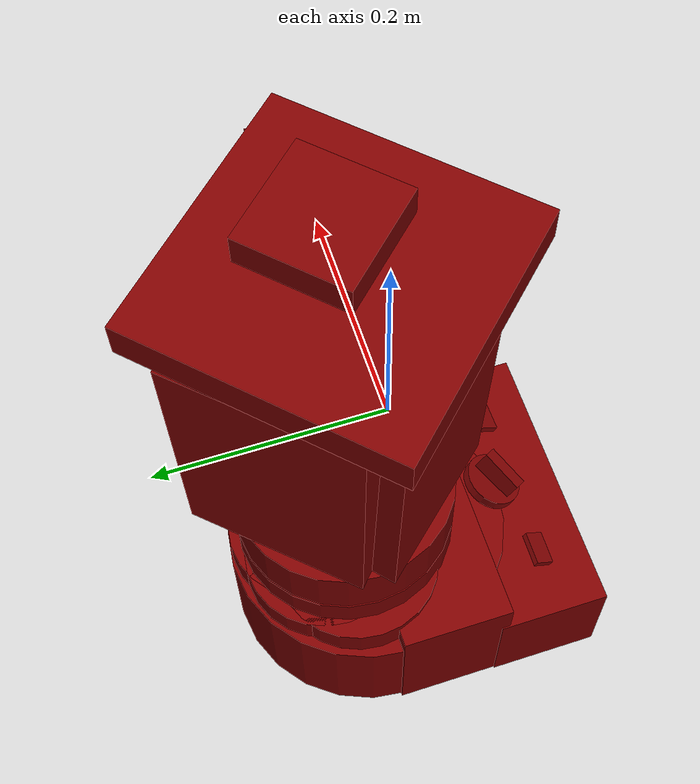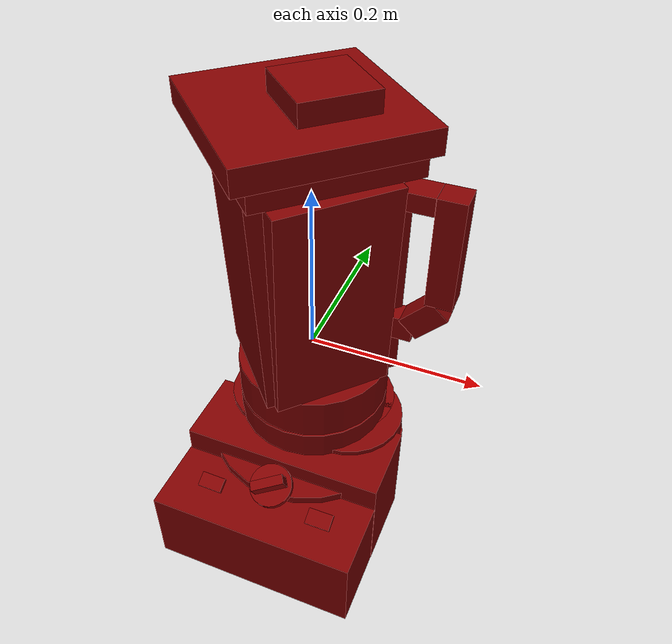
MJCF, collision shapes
<?xml version='1.0' encoding='UTF-8'?>
<mujoco model="model">
  <option timestep="0.0005" gravity="0.0 0.0 -9.81"/>
  <compiler angle="radian"/>
  <asset>
    <mesh file="visuals/Blade001.obj" name="Blade001_vis"/>
    <mesh file="visuals/Body001.obj" name="Body001_vis"/>
    <mesh file="visuals/Button001.obj" name="Button001_vis"/>
    <mesh file="visuals/Button002.obj" name="Button002_vis"/>
    <mesh file="visuals/Jug001.obj" name="Jug001_vis"/>
    <mesh file="visuals/Jug001_Clear.obj" name="Jug001_Clear_vis"/>
    <mesh file="visuals/Knob001.obj" name="Knob001_vis"/>
    <mesh file="visuals/Lid001.obj" name="Lid001_vis"/>
    <texture file="visuals/T_BC001.png" name="Body001_material" type="2d"/>
    <material name="Body001_material" rgba="1 1 1 1.0" texture="Body001_material" shininess="0.141421377658844" specular="0.33333333333333337"/>
    <texture file="visuals/T_BC001.png" name="Button001_material" type="2d"/>
    <material name="Button001_material" rgba="1 1 1 1.0" texture="Button001_material" shininess="0.141421377658844" specular="0.33333333333333337"/>
    <texture file="visuals/T_BC001.png" name="Button002_material" type="2d"/>
    <material name="Button002_material" rgba="1 1 1 1.0" texture="Button002_material" shininess="0.141421377658844" specular="0.33333333333333337"/>
    <texture file="visuals/T_BC001.png" name="Jug001_material" type="2d"/>
    <material name="Jug001_material" rgba="1 1 1 1.0" texture="Jug001_material" shininess="0.141421377658844" specular="0.33333333333333337"/>
    <texture file="visuals/T_BC001.png" name="Blade001_material" type="2d"/>
    <material name="Blade001_material" rgba="1 1 1 1.0" texture="Blade001_material" shininess="0.141421377658844" specular="3"/>
    <texture file="visuals/T_BC001.png" name="Jug001_Clear_material" type="2d"/>
    <material name="Jug001_Clear_material" rgba="1 1 1 0.699999988079071" texture="Jug001_Clear_material" shininess="0.8264863044023514" specular="0.7872340339187474"/>
    <texture file="visuals/T_BC001.png" name="Knob001_material" type="2d"/>
    <material name="Knob001_material" rgba="1 1 1 1.0" texture="Knob001_material" shininess="0.141421377658844" specular="0.33333333333333337"/>
    <texture file="visuals/T_BC001.png" name="Lid001_material" type="2d"/>
    <material name="Lid001_material" rgba="1 1 1 1.0" texture="Lid001_material" shininess="0.141421377658844" specular="0.33333333333333337"/>
  </asset>
  <default>
    <default class="visual">
      <geom conaffinity="0" contype="0" group="1" type="mesh"/>
    </default>
    <default class="collision">
      <geom group="0" rgba="0.5 0 0 0.5"/>
    </default>
    <default class="spawn">
      <geom group="0" rgba="1 1 1 0.5" contype="0" conaffinity="0"/>
      <site group="0" rgba="1 1 1 0.5"/>
    </default>
    <default class="region">
      <geom group="1" conaffinity="0" contype="0" rgba="0 1 0 0"/>
    </default>
  </default>
  <worldbody>
    <body>
      <body name="object">
        <geom mesh="Body001_vis" type="mesh" solimp="0.998 0.998 0.001" solref="0.001 1" friction="0.95 0.3 0.1" class="visual" material="Body001_material"/>
        <geom class="collision" type="box" pos="-0.01743007 -0.01908264 -0.22553408" size="0.12968866527080536 0.05051147937774658 0.07040132582187653" quat="1.0 0.0 0.0 0.0"/>
        <geom class="collision" type="box" pos="-0.01822870 -0.11254722 -0.24224916" size="0.1301640272140503 0.05060109868645668 0.053686242550611496" quat="1.0 0.0 0.0 0.0"/>
        <geom class="collision" type="cylinder" pos="-0.01745005 0.04508350 -0.15840825" size="0.09668879210948944 0.03932907059788704" quat="1.0 0.0 0.0 0.0"/>
        <geom class="collision" type="cylinder" pos="-0.01728963 0.02501012 -0.23692481" size="0.1277042180299759 0.059179969131946564" quat="1.0 0.0 0.0 0.0"/>
        <geom class="collision" type="cylinder" pos="-0.06051707 0.04713970 -0.18221265" size="0.07243027538061142 0.033565230667591095" quat="1.0 0.0 0.0 0.0"/>
        <geom class="collision" type="cylinder" pos="-0.01141017 0.07806424 -0.18221265" size="0.07243027538061142 0.033565230667591095" quat="1.0 0.0 0.0 0.0"/>
        <geom class="collision" type="cylinder" pos="0.01400837 0.06626657 -0.18221265" size="0.07243027538061142 0.033565230667591095" quat="1.0 0.0 0.0 0.0"/>
        <geom class="collision" type="cylinder" pos="0.03372710 0.03997962 -0.18221265" size="0.07243027538061142 0.033565230667591095" quat="1.0 0.0 0.0 0.0"/>
        <geom class="collision" type="cylinder" pos="-0.04073561 0.07124133 -0.18221265" size="0.07243027538061142 0.033565230667591095" quat="1.0 0.0 0.0 0.0"/>
        <body name="Button001">
          <joint axis="0.0 0.4226183593273163 -0.9063079357147217" pos="0.05751518 -0.11553806 -0.17846154" limited="true" name="Button001_joint" range="0.0 0.003" type="slide" damping="1" frictionloss="1" armature=".01" stiffness="0.5" springref="-0.5"/>
          <geom mesh="Button001_vis" type="mesh" solimp="0.998 0.998 0.001" solref="0.001 1" friction="0.95 0.3 0.1" class="visual" material="Button001_material"/>
          <geom class="collision" type="box" pos="0.05703367 -0.11604892 -0.17720503" size="0.015535996295511723 0.009651546366512775 0.0032402225770056248" quat="0.969495415687561 0.24482029676437378 0.009978671558201313 0.00648893415927887"/>
        </body>
        <body name="Button002">
          <joint axis="-5.6152605808054936e-18 0.4226183593273163 -0.9063079357147217" pos="-0.08866869 -0.11558645 -0.17845373" limited="true" name="Button002_joint" range="0.0 0.003" type="slide" damping="1" frictionloss="1" armature=".01" stiffness="0.5" springref="-0.5"/>
          <geom mesh="Button002_vis" type="mesh" solimp="0.998 0.998 0.001" solref="0.001 1" friction="0.95 0.3 0.1" class="visual" material="Button002_material"/>
          <geom class="collision" type="box" pos="-0.08898954 -0.11713010 -0.17729708" size="0.015483303926885128 0.008930300362408161 0.002988857915624976" quat="0.9694134593009949 0.2453550100326538 -0.0021198231261223555 -0.005826357286423445"/>
        </body>
        <body name="Jug001">
          <joint axis="0.0 0.0 1.0" pos="0.03004597 0.04699287 0.04808532" limited="true" name="Jug001_joint" range="0.0 0.05" type="slide" damping="1" frictionloss="1" armature=".01" stiffness="0.05"/>
          <geom mesh="Jug001_vis" type="mesh" solimp="0.998 0.998 0.001" solref="0.001 1" friction="0.95 0.3 0.1" class="visual" material="Jug001_material"/>
          <geom class="collision" type="box" pos="0.02975277 -0.01388730 0.07544540" size="0.0721902921795845 0.012196497060358524 0.13525761663913727" quat="0.9156303405761719 0.017245326191186905 0.007563496939837933 0.40157994627952576"/>
          <geom class="collision" type="box" pos="-0.06811962 0.11111925 0.07610477" size="0.07833114266395569 0.012838413007557392 0.13396118581295013" quat="0.914870023727417 -0.019253043457865715 -0.032436903566122055 0.4019826352596283"/>
          <geom class="collision" type="box" pos="-0.07223981 -0.01232059 0.07612204" size="0.0721672773361206 0.012000609189271927 0.13558508455753326" quat="0.4066144526004791 -0.017574811354279518 -0.011982575058937073 0.9133521914482117"/>
          <geom class="collision" type="box" pos="0.03248799 0.10532500 0.07599545" size="0.07356119900941849 0.010724218562245369 0.13674744963645935" quat="0.4069778621196747 -0.0019201186951249838 0.007655052468180656 0.9134039282798767"/>
          <geom class="collision" type="box" pos="0.10085973 0.04720987 0.19090898" size="0.018853865563869476 0.016030292958021164 0.010851765982806683" quat="1.0 0.0 0.0 0.0"/>
          <geom class="collision" type="box" pos="0.09130741 0.04704521 0.02014696" size="0.017213819548487663 0.013093107379972935 0.014991587027907372" quat="1.0 0.0 0.0 0.0"/>
          <geom class="collision" type="box" pos="0.13611458 0.04720987 0.13432606" size="0.015919027850031853 0.016030292958021164 0.06743469834327698" quat="1.0 0.0 0.0 0.0"/>
          <geom class="collision" type="box" pos="0.12093865 0.04692338 0.04219097" size="0.02517963945865631 0.014718655496835709 0.014991587027907372" quat="0.917942225933075 0.0 -0.39671412110328674 0.0"/>
          <geom class="collision" type="cylinder" pos="-0.01745005 0.04508350 -0.08908665" size="0.09668877720832825 0.02689594402909279" quat="1.0 0.0 0.0 0.0"/>
          <body name="Blade001">
            <joint axis="0.0 0.0 1.0" pos="-0.01694712 0.04698000 -0.03920843" limited="false" name="Blade001_joint" range="0 360" type="hinge" damping="1" frictionloss="1" armature=".01" stiffness="0.05"/>
            <geom mesh="Blade001_vis" type="mesh" solimp="0.998 0.998 0.001" solref="0.001 1" friction="0.95 0.3 0.1" class="visual" material="Blade001_material"/>
            <geom class="collision" type="box" pos="-0.01826089 0.04772887 -0.04420773" size="0.03555736690759659 0.011566841043531895 0.005374473053961992" quat="1.0 0.0 0.0 0.0"/>
            <geom class="collision" type="box" pos="-0.01660209 0.02411597 -0.04357884" size="0.010374368168413639 0.011566841043531895 0.0021979371085762978" quat="1.0 0.0 0.0 0.0"/>
            <geom class="collision" type="box" pos="-0.01660209 0.07107933 -0.04357884" size="0.010374368168413639 0.011566841043531895 0.0021979371085762978" quat="1.0 0.0 0.0 0.0"/>
            <geom class="collision" type="box" pos="-0.01660209 0.09607778 -0.05061881" size="0.010374368168413639 0.01796589232981205 0.0011200293665751815" quat="0.9813559651374817 -0.19219909608364105 -0.0 0.0"/>
            <geom class="collision" type="box" pos="-0.01660209 -0.00235559 -0.05061881" size="0.010374368168413639 0.01796589232981205 0.0011200293665751815" quat="0.9813559651374817 0.19219909608364105 0.0 0.0"/>
            <geom class="collision" type="box" pos="-0.06340711 0.04655903 -0.03094639" size="0.013877377845346928 0.0055869086645543575 0.0011185097973793745" quat="0.9225588440895081 0.0 0.3858564496040344 0.0"/>
            <geom class="collision" type="box" pos="0.02965547 0.04655903 -0.03094639" size="0.013877377845346928 0.0055869086645543575 0.0011185097973793745" quat="0.9225588440895081 0.0 -0.3858564496040344 0.0"/>
          </body>
          <body name="Jug001_Clear">
            <geom class="region" name="reg_int" type="box" pos="-0.017753785 0.04698981 0.09888576" size="0.022582325 0.06463076000000001 0.11066815"/>
            <geom mesh="Jug001_Clear_vis" type="mesh" solimp="0.998 0.998 0.001" solref="0.001 1" friction="0.95 0.3 0.1" class="visual" material="Jug001_Clear_material"/>
            <geom class="collision" type="box" pos="0.02975277 -0.01388730 0.07544540" size="0.0721902921795845 0.012196497060358524 0.13525761663913727" quat="0.9156303405761719 0.017245326191186905 0.007563496939837933 0.40157994627952576"/>
            <geom class="collision" type="box" pos="-0.06811962 0.11111925 0.07610477" size="0.07833114266395569 0.012838413007557392 0.13396118581295013" quat="0.914870023727417 -0.019253043457865715 -0.032436903566122055 0.4019826352596283"/>
            <geom class="collision" type="box" pos="-0.07223981 -0.01232059 0.07612204" size="0.0721672773361206 0.012000609189271927 0.13558508455753326" quat="0.4066144526004791 -0.017574811354279518 -0.011982575058937073 0.9133521914482117"/>
            <geom class="collision" type="box" pos="0.03248799 0.10532500 0.07599545" size="0.07356119900941849 0.010724218562245369 0.13674744963645935" quat="0.4069778621196747 -0.0019201186951249838 0.007655052468180656 0.9134039282798767"/>
          </body>
        </body>
        <body name="Knob001">
          <joint axis="0.0 0.42261821031570435 -0.9063078165054321" pos="-0.01493116 -0.10340426 -0.16157910" limited="true" name="Knob001_joint" range="0.0 4.1887902047863905" type="hinge" damping="0.05" frictionloss="0.1" armature="0.001"/>
          <geom mesh="Knob001_vis" type="mesh" solimp="0.998 0.998 0.001" solref="0.001 1" friction="0.95 0.3 0.1" class="visual" material="Knob001_material"/>
          <geom class="collision" type="cylinder" pos="-0.01481691 -0.09886119 -0.16865791" size="0.026953713968396187 0.004453835543245077" quat="0.9746725559234619 0.22363674640655518 -4.965733631128541e-17 -1.5369836527898264e-24" density="0.001"/>
          <geom class="collision" type="box" pos="-0.01453726 -0.10554808 -0.15796772" size="0.0061064972542226315 0.020651644095778465 0.011173461563885212" quat="0.8418465256690979 0.2161499410867691 0.09332498162984848 -0.4856584072113037" density="0.001"/>
        </body>
        <body name="Lid001">
          <joint axis="0.0 0.0 1.0" pos="-0.02119968 0.04713074 0.26329149" limited="true" name="Lid001_joint" range="0.0 0.08" type="slide" damping="1" frictionloss="1" armature=".01" stiffness="0.05"/>
          <geom mesh="Lid001_vis" type="mesh" solimp="0.998 0.998 0.001" solref="0.001 1" friction="0.95 0.3 0.1" class="visual" material="Lid001_material"/>
          <geom class="collision" type="box" pos="-0.03192177 0.04726026 0.25546540" size="0.10757600516080856 0.10634037852287292 0.014792152680456638" quat="0.9254322648048401 0.0 0.0 0.3789130747318268"/>
          <geom class="collision" type="box" pos="-0.02674745 0.04609625 0.22775848" size="0.0941307470202446 0.09299993515014648 0.01283076498657465" quat="0.9254322648048401 0.0 0.0 0.3789130747318268"/>
          <geom class="collision" type="box" pos="-0.00757370 0.04826903 0.28405164" size="0.04403645172715187 0.044515419751405716 0.012560202740132809" quat="0.9254322648048401 0.0 0.0 0.3789130747318268"/>
        </body>
        <geom class="region" name="reg_main" type="box" pos="-0.021296125 2.7999999999139824e-07 3.350000000179598e-07" size="0.133710725 0.16606809 0.296851645"/>
      </body>
    </body>
  </worldbody>
  <actuator>
    <motor name="Button001_joint_actuator" joint="Button001_joint" gear="0.5"/>
    <motor name="Button002_joint_actuator" joint="Button002_joint" gear="0.5"/>
    <motor name="Jug001_joint_actuator" joint="Jug001_joint" gear="0.5"/>
    <motor name="Knob001_joint_actuator" joint="Knob001_joint" gear="10"/>
    <motor name="Lid001_joint_actuator" joint="Lid001_joint" gear="0.5"/>
    <motor name="Blade001_joint_actuator" joint="Blade001_joint" gear="10"/>
  </actuator>
</mujoco>
